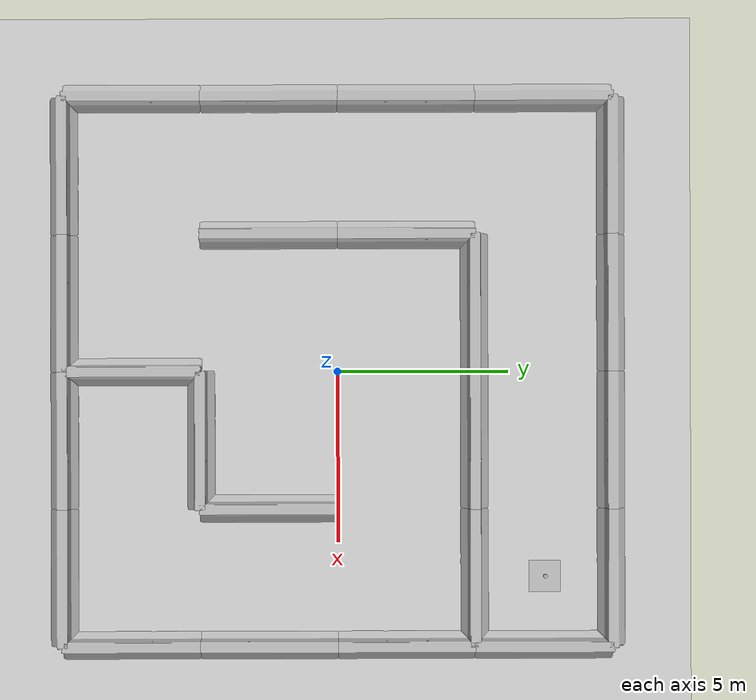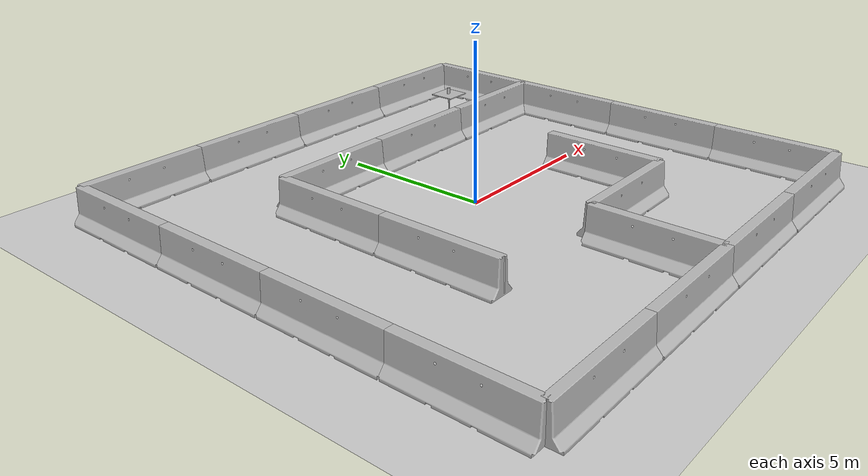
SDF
<sdf version="1.6">
 <world name="default">
  <light name="sun" type="directional">
   <pose>0 0 10 0 -0 0</pose>
   <diffuse>0.8 0.8 0.8 1</diffuse>
   <specular>0.2 0.2 0.2 1</specular>
   <attenuation>
    <range>1000</range>
    <constant>0.9</constant>
    <linear>0.01</linear>
    <quadratic>0.001</quadratic>
   </attenuation>
   <direction>-0.5 0.1 -0.9</direction>
  </light>
  <model name="ground_plane">
   <static>1</static>
   <link name="link">
    <collision name="collision">
     <geometry><plane><normal>0 0 1</normal><size>100 100</size></plane></geometry>
     <surface>
      <contact><collide_bitmask>65535</collide_bitmask></contact>
      <friction><ode><mu>100</mu><mu2>50</mu2></ode></friction>
     </surface>
    </collision>
    <visual name="visual">
     <cast_shadows>0</cast_shadows>
     <geometry><plane><normal>0 0 1</normal><size>100 100</size></plane></geometry>
     <material>
      <script><uri>file://media/materials/scripts/gazebo.material</uri><name>Gazebo/Grey</name></script>
     </material>
    </visual>
   </link>
  </model>
  <gravity>0 0 -9.8</gravity>
  <magnetic_field>6e-06 2.3e-05 -4.2e-05</magnetic_field>
  <atmosphere type="adiabatic"/>
  <physics name="default_physics" default="0" type="ode">
   <max_step_size>0.001</max_step_size>
   <real_time_factor>1</real_time_factor>
   <real_time_update_rate>1000</real_time_update_rate>
  </physics>
  <scene><ambient>0.4 0.4 0.4 1</ambient><background>0.7 0.7 0.7 1</background><shadows>1</shadows></scene>
  <spherical_coordinates>
   <surface_model>EARTH_WGS84</surface_model>
   <latitude_deg>0</latitude_deg>
   <longitude_deg>0</longitude_deg>
   <elevation>0</elevation>
   <heading_deg>0</heading_deg>
  </spherical_coordinates>
  <model name="jersey_barrier">
   <static>1</static>
   <link name="link">
    <visual name="visual">
     <geometry><mesh><uri>model://jersey_barrier/meshes/jersey_barrier.dae</uri></mesh></geometry>
    </visual>
    <collision name="upright">
     <pose>0 0 0.5715 0 -0 0</pose>
     <geometry><box><size>4.06542 0.3063 1.143</size></box></geometry>
    </collision>
    <collision name="base">
     <pose>0 0 0.032258 0 -0 0</pose>
     <geometry><box><size>4.06542 0.8107 0.064516</size></box></geometry>
    </collision>
    <collision name="base2">
     <pose>0 0 0.1 0 -0 0</pose>
     <geometry><box><size>4.06542 0.65 0.1</size></box></geometry>
    </collision>
    <collision name="base3">
     <pose>0 0 0.2 0 -0 0</pose>
     <geometry><box><size>4.06542 0.5 0.1</size></box></geometry>
    </collision>
    <collision name="left-angle">
     <pose>0 -0.224 0.2401 0.9 -0 0</pose>
     <geometry><box><size>4.06542 0.5 0.064516</size></box></geometry>
    </collision>
    <collision name="right-angle">
     <pose>0 0.224 0.2401 -0.9 0 0</pose>
     <geometry><box><size>4.06542 0.5 0.064516</size></box></geometry>
    </collision>
   </link>
   <pose>-6 -8 0 0 -0 0</pose>
  </model>
  <model name="jersey_barrier_clone">
   <static>1</static>
   <link name="link">
    <visual name="visual">
     <geometry><mesh><uri>model://jersey_barrier/meshes/jersey_barrier.dae</uri></mesh></geometry>
    </visual>
    <collision name="upright">
     <pose>0 0 0.5715 0 -0 0</pose>
     <geometry><box><size>4.06542 0.3063 1.143</size></box></geometry>
    </collision>
    <collision name="base">
     <pose>0 0 0.032258 0 -0 0</pose>
     <geometry><box><size>4.06542 0.8107 0.064516</size></box></geometry>
    </collision>
    <collision name="base2">
     <pose>0 0 0.1 0 -0 0</pose>
     <geometry><box><size>4.06542 0.65 0.1</size></box></geometry>
    </collision>
    <collision name="base3">
     <pose>0 0 0.2 0 -0 0</pose>
     <geometry><box><size>4.06542 0.5 0.1</size></box></geometry>
    </collision>
    <collision name="left-angle">
     <pose>0 -0.224 0.2401 0.9 -0 0</pose>
     <geometry><box><size>4.06542 0.5 0.064516</size></box></geometry>
    </collision>
    <collision name="right-angle">
     <pose>0 0.224 0.2401 -0.9 0 0</pose>
     <geometry><box><size>4.06542 0.5 0.064516</size></box></geometry>
    </collision>
   </link>
   <pose>2 -8 0 0 -0 0</pose>
  </model>
  <model name="jersey_barrier_clone_0">
   <static>1</static>
   <link name="link">
    <visual name="visual">
     <geometry><mesh><uri>model://jersey_barrier/meshes/jersey_barrier.dae</uri></mesh></geometry>
    </visual>
    <collision name="upright">
     <pose>0 0 0.5715 0 -0 0</pose>
     <geometry><box><size>4.06542 0.3063 1.143</size></box></geometry>
    </collision>
    <collision name="base">
     <pose>0 0 0.032258 0 -0 0</pose>
     <geometry><box><size>4.06542 0.8107 0.064516</size></box></geometry>
    </collision>
    <collision name="base2">
     <pose>0 0 0.1 0 -0 0</pose>
     <geometry><box><size>4.06542 0.65 0.1</size></box></geometry>
    </collision>
    <collision name="base3">
     <pose>0 0 0.2 0 -0 0</pose>
     <geometry><box><size>4.06542 0.5 0.1</size></box></geometry>
    </collision>
    <collision name="left-angle">
     <pose>0 -0.224 0.2401 0.9 -0 0</pose>
     <geometry><box><size>4.06542 0.5 0.064516</size></box></geometry>
    </collision>
    <collision name="right-angle">
     <pose>0 0.224 0.2401 -0.9 0 0</pose>
     <geometry><box><size>4.06542 0.5 0.064516</size></box></geometry>
    </collision>
   </link>
   <pose>-2 -8 0 0 -0 0</pose>
  </model>
  <model name="jersey_barrier_clone_1">
   <static>1</static>
   <link name="link">
    <visual name="visual">
     <geometry><mesh><uri>model://jersey_barrier/meshes/jersey_barrier.dae</uri></mesh></geometry>
    </visual>
    <collision name="upright">
     <pose>0 0 0.5715 0 -0 0</pose>
     <geometry><box><size>4.06542 0.3063 1.143</size></box></geometry>
    </collision>
    <collision name="base">
     <pose>0 0 0.032258 0 -0 0</pose>
     <geometry><box><size>4.06542 0.8107 0.064516</size></box></geometry>
    </collision>
    <collision name="base2">
     <pose>0 0 0.1 0 -0 0</pose>
     <geometry><box><size>4.06542 0.65 0.1</size></box></geometry>
    </collision>
    <collision name="base3">
     <pose>0 0 0.2 0 -0 0</pose>
     <geometry><box><size>4.06542 0.5 0.1</size></box></geometry>
    </collision>
    <collision name="left-angle">
     <pose>0 -0.224 0.2401 0.9 -0 0</pose>
     <geometry><box><size>4.06542 0.5 0.064516</size></box></geometry>
    </collision>
    <collision name="right-angle">
     <pose>0 0.224 0.2401 -0.9 0 0</pose>
     <geometry><box><size>4.06542 0.5 0.064516</size></box></geometry>
    </collision>
   </link>
   <pose>8 6 0 0 -0 1.5708</pose>
  </model>
  <model name="jersey_barrier_clone_2">
   <static>1</static>
   <link name="link">
    <visual name="visual">
     <geometry><mesh><uri>model://jersey_barrier/meshes/jersey_barrier.dae</uri></mesh></geometry>
    </visual>
    <collision name="upright">
     <pose>0 0 0.5715 0 -0 0</pose>
     <geometry><box><size>4.06542 0.3063 1.143</size></box></geometry>
    </collision>
    <collision name="base">
     <pose>0 0 0.032258 0 -0 0</pose>
     <geometry><box><size>4.06542 0.8107 0.064516</size></box></geometry>
    </collision>
    <collision name="base2">
     <pose>0 0 0.1 0 -0 0</pose>
     <geometry><box><size>4.06542 0.65 0.1</size></box></geometry>
    </collision>
    <collision name="base3">
     <pose>0 0 0.2 0 -0 0</pose>
     <geometry><box><size>4.06542 0.5 0.1</size></box></geometry>
    </collision>
    <collision name="left-angle">
     <pose>0 -0.224 0.2401 0.9 -0 0</pose>
     <geometry><box><size>4.06542 0.5 0.064516</size></box></geometry>
    </collision>
    <collision name="right-angle">
     <pose>0 0.224 0.2401 -0.9 0 0</pose>
     <geometry><box><size>4.06542 0.5 0.064516</size></box></geometry>
    </collision>
   </link>
   <pose>-2 4 0 0 -0 0</pose>
  </model>
  <model name="jersey_barrier_clone_3">
   <static>1</static>
   <link name="link">
    <visual name="visual">
     <geometry><mesh><uri>model://jersey_barrier/meshes/jersey_barrier.dae</uri></mesh></geometry>
    </visual>
    <collision name="upright">
     <pose>0 0 0.5715 0 -0 0</pose>
     <geometry><box><size>4.06542 0.3063 1.143</size></box></geometry>
    </collision>
    <collision name="base">
     <pose>0 0 0.032258 0 -0 0</pose>
     <geometry><box><size>4.06542 0.8107 0.064516</size></box></geometry>
    </collision>
    <collision name="base2">
     <pose>0 0 0.1 0 -0 0</pose>
     <geometry><box><size>4.06542 0.65 0.1</size></box></geometry>
    </collision>
    <collision name="base3">
     <pose>0 0 0.2 0 -0 0</pose>
     <geometry><box><size>4.06542 0.5 0.1</size></box></geometry>
    </collision>
    <collision name="left-angle">
     <pose>0 -0.224 0.2401 0.9 -0 0</pose>
     <geometry><box><size>4.06542 0.5 0.064516</size></box></geometry>
    </collision>
    <collision name="right-angle">
     <pose>0 0.224 0.2401 -0.9 0 0</pose>
     <geometry><box><size>4.06542 0.5 0.064516</size></box></geometry>
    </collision>
   </link>
   <pose>6 8 0 0 -0 0</pose>
  </model>
  <model name="jersey_barrier_clone_4">
   <static>1</static>
   <link name="link">
    <visual name="visual">
     <geometry><mesh><uri>model://jersey_barrier/meshes/jersey_barrier.dae</uri></mesh></geometry>
    </visual>
    <collision name="upright">
     <pose>0 0 0.5715 0 -0 0</pose>
     <geometry><box><size>4.06542 0.3063 1.143</size></box></geometry>
    </collision>
    <collision name="base">
     <pose>0 0 0.032258 0 -0 0</pose>
     <geometry><box><size>4.06542 0.8107 0.064516</size></box></geometry>
    </collision>
    <collision name="base2">
     <pose>0 0 0.1 0 -0 0</pose>
     <geometry><box><size>4.06542 0.65 0.1</size></box></geometry>
    </collision>
    <collision name="base3">
     <pose>0 0 0.2 0 -0 0</pose>
     <geometry><box><size>4.06542 0.5 0.1</size></box></geometry>
    </collision>
    <collision name="left-angle">
     <pose>0 -0.224 0.2401 0.9 -0 0</pose>
     <geometry><box><size>4.06542 0.5 0.064516</size></box></geometry>
    </collision>
    <collision name="right-angle">
     <pose>0 0.224 0.2401 -0.9 0 0</pose>
     <geometry><box><size>4.06542 0.5 0.064516</size></box></geometry>
    </collision>
   </link>
   <pose>2 8 0 0 -0 0</pose>
  </model>
  <model name="jersey_barrier_clone_5">
   <static>1</static>
   <link name="link">
    <visual name="visual">
     <geometry><mesh><uri>model://jersey_barrier/meshes/jersey_barrier.dae</uri></mesh></geometry>
    </visual>
    <collision name="upright">
     <pose>0 0 0.5715 0 -0 0</pose>
     <geometry><box><size>4.06542 0.3063 1.143</size></box></geometry>
    </collision>
    <collision name="base">
     <pose>0 0 0.032258 0 -0 0</pose>
     <geometry><box><size>4.06542 0.8107 0.064516</size></box></geometry>
    </collision>
    <collision name="base2">
     <pose>0 0 0.1 0 -0 0</pose>
     <geometry><box><size>4.06542 0.65 0.1</size></box></geometry>
    </collision>
    <collision name="base3">
     <pose>0 0 0.2 0 -0 0</pose>
     <geometry><box><size>4.06542 0.5 0.1</size></box></geometry>
    </collision>
    <collision name="left-angle">
     <pose>0 -0.224 0.2401 0.9 -0 0</pose>
     <geometry><box><size>4.06542 0.5 0.064516</size></box></geometry>
    </collision>
    <collision name="right-angle">
     <pose>0 0.224 0.2401 -0.9 0 0</pose>
     <geometry><box><size>4.06542 0.5 0.064516</size></box></geometry>
    </collision>
   </link>
   <pose>2 4 0 0 -0 0</pose>
  </model>
  <model name="jersey_barrier_clone_7">
   <static>1</static>
   <link name="link">
    <visual name="visual">
     <geometry><mesh><uri>model://jersey_barrier/meshes/jersey_barrier.dae</uri></mesh></geometry>
    </visual>
    <collision name="upright">
     <pose>0 0 0.5715 0 -0 0</pose>
     <geometry><box><size>4.06542 0.3063 1.143</size></box></geometry>
    </collision>
    <collision name="base">
     <pose>0 0 0.032258 0 -0 0</pose>
     <geometry><box><size>4.06542 0.8107 0.064516</size></box></geometry>
    </collision>
    <collision name="base2">
     <pose>0 0 0.1 0 -0 0</pose>
     <geometry><box><size>4.06542 0.65 0.1</size></box></geometry>
    </collision>
    <collision name="base3">
     <pose>0 0 0.2 0 -0 0</pose>
     <geometry><box><size>4.06542 0.5 0.1</size></box></geometry>
    </collision>
    <collision name="left-angle">
     <pose>0 -0.224 0.2401 0.9 -0 0</pose>
     <geometry><box><size>4.06542 0.5 0.064516</size></box></geometry>
    </collision>
    <collision name="right-angle">
     <pose>0 0.224 0.2401 -0.9 0 0</pose>
     <geometry><box><size>4.06542 0.5 0.064516</size></box></geometry>
    </collision>
   </link>
   <pose>-2 8 0 0 -0 0</pose>
  </model>
  <model name="jersey_barrier_clone_8">
   <static>1</static>
   <link name="link">
    <visual name="visual">
     <geometry><mesh><uri>model://jersey_barrier/meshes/jersey_barrier.dae</uri></mesh></geometry>
    </visual>
    <collision name="upright">
     <pose>0 0 0.5715 0 -0 0</pose>
     <geometry><box><size>4.06542 0.3063 1.143</size></box></geometry>
    </collision>
    <collision name="base">
     <pose>0 0 0.032258 0 -0 0</pose>
     <geometry><box><size>4.06542 0.8107 0.064516</size></box></geometry>
    </collision>
    <collision name="base2">
     <pose>0 0 0.1 0 -0 0</pose>
     <geometry><box><size>4.06542 0.65 0.1</size></box></geometry>
    </collision>
    <collision name="base3">
     <pose>0 0 0.2 0 -0 0</pose>
     <geometry><box><size>4.06542 0.5 0.1</size></box></geometry>
    </collision>
    <collision name="left-angle">
     <pose>0 -0.224 0.2401 0.9 -0 0</pose>
     <geometry><box><size>4.06542 0.5 0.064516</size></box></geometry>
    </collision>
    <collision name="right-angle">
     <pose>0 0.224 0.2401 -0.9 0 0</pose>
     <geometry><box><size>4.06542 0.5 0.064516</size></box></geometry>
    </collision>
   </link>
   <pose>6 4 0 0 -0 0</pose>
  </model>
  <model name="jersey_barrier_clone_9">
   <static>1</static>
   <link name="link">
    <visual name="visual">
     <geometry><mesh><uri>model://jersey_barrier/meshes/jersey_barrier.dae</uri></mesh></geometry>
    </visual>
    <collision name="upright">
     <pose>0 0 0.5715 0 -0 0</pose>
     <geometry><box><size>4.06542 0.3063 1.143</size></box></geometry>
    </collision>
    <collision name="base">
     <pose>0 0 0.032258 0 -0 0</pose>
     <geometry><box><size>4.06542 0.8107 0.064516</size></box></geometry>
    </collision>
    <collision name="base2">
     <pose>0 0 0.1 0 -0 0</pose>
     <geometry><box><size>4.06542 0.65 0.1</size></box></geometry>
    </collision>
    <collision name="base3">
     <pose>0 0 0.2 0 -0 0</pose>
     <geometry><box><size>4.06542 0.5 0.1</size></box></geometry>
    </collision>
    <collision name="left-angle">
     <pose>0 -0.224 0.2401 0.9 -0 0</pose>
     <geometry><box><size>4.06542 0.5 0.064516</size></box></geometry>
    </collision>
    <collision name="right-angle">
     <pose>0 0.224 0.2401 -0.9 0 0</pose>
     <geometry><box><size>4.06542 0.5 0.064516</size></box></geometry>
    </collision>
   </link>
   <pose>6 -8 0 0 -0 0</pose>
  </model>
  <model name="jersey_barrier_clone_10">
   <static>1</static>
   <link name="link">
    <visual name="visual">
     <geometry><mesh><uri>model://jersey_barrier/meshes/jersey_barrier.dae</uri></mesh></geometry>
    </visual>
    <collision name="upright">
     <pose>0 0 0.5715 0 -0 0</pose>
     <geometry><box><size>4.06542 0.3063 1.143</size></box></geometry>
    </collision>
    <collision name="base">
     <pose>0 0 0.032258 0 -0 0</pose>
     <geometry><box><size>4.06542 0.8107 0.064516</size></box></geometry>
    </collision>
    <collision name="base2">
     <pose>0 0 0.1 0 -0 0</pose>
     <geometry><box><size>4.06542 0.65 0.1</size></box></geometry>
    </collision>
    <collision name="base3">
     <pose>0 0 0.2 0 -0 0</pose>
     <geometry><box><size>4.06542 0.5 0.1</size></box></geometry>
    </collision>
    <collision name="left-angle">
     <pose>0 -0.224 0.2401 0.9 -0 0</pose>
     <geometry><box><size>4.06542 0.5 0.064516</size></box></geometry>
    </collision>
    <collision name="right-angle">
     <pose>0 0.224 0.2401 -0.9 0 0</pose>
     <geometry><box><size>4.06542 0.5 0.064516</size></box></geometry>
    </collision>
   </link>
   <pose>2 -4 0 0 -0 0</pose>
  </model>
  <model name="jersey_barrier_clone_11">
   <static>1</static>
   <link name="link">
    <visual name="visual">
     <geometry><mesh><uri>model://jersey_barrier/meshes/jersey_barrier.dae</uri></mesh></geometry>
    </visual>
    <collision name="upright">
     <pose>0 0 0.5715 0 -0 0</pose>
     <geometry><box><size>4.06542 0.3063 1.143</size></box></geometry>
    </collision>
    <collision name="base">
     <pose>0 0 0.032258 0 -0 0</pose>
     <geometry><box><size>4.06542 0.8107 0.064516</size></box></geometry>
    </collision>
    <collision name="base2">
     <pose>0 0 0.1 0 -0 0</pose>
     <geometry><box><size>4.06542 0.65 0.1</size></box></geometry>
    </collision>
    <collision name="base3">
     <pose>0 0 0.2 0 -0 0</pose>
     <geometry><box><size>4.06542 0.5 0.1</size></box></geometry>
    </collision>
    <collision name="left-angle">
     <pose>0 -0.224 0.2401 0.9 -0 0</pose>
     <geometry><box><size>4.06542 0.5 0.064516</size></box></geometry>
    </collision>
    <collision name="right-angle">
     <pose>0 0.224 0.2401 -0.9 0 0</pose>
     <geometry><box><size>4.06542 0.5 0.064516</size></box></geometry>
    </collision>
   </link>
   <pose>-6 8 0 0 -0 0</pose>
  </model>
  <model name="jersey_barrier_clone_1_clone">
   <static>1</static>
   <link name="link">
    <visual name="visual">
     <geometry><mesh><uri>model://jersey_barrier/meshes/jersey_barrier.dae</uri></mesh></geometry>
    </visual>
    <collision name="upright">
     <pose>0 0 0.5715 0 -0 0</pose>
     <geometry><box><size>4.06542 0.3063 1.143</size></box></geometry>
    </collision>
    <collision name="base">
     <pose>0 0 0.032258 0 -0 0</pose>
     <geometry><box><size>4.06542 0.8107 0.064516</size></box></geometry>
    </collision>
    <collision name="base2">
     <pose>0 0 0.1 0 -0 0</pose>
     <geometry><box><size>4.06542 0.65 0.1</size></box></geometry>
    </collision>
    <collision name="base3">
     <pose>0 0 0.2 0 -0 0</pose>
     <geometry><box><size>4.06542 0.5 0.1</size></box></geometry>
    </collision>
    <collision name="left-angle">
     <pose>0 -0.224 0.2401 0.9 -0 0</pose>
     <geometry><box><size>4.06542 0.5 0.064516</size></box></geometry>
    </collision>
    <collision name="right-angle">
     <pose>0 0.224 0.2401 -0.9 0 0</pose>
     <geometry><box><size>4.06542 0.5 0.064516</size></box></geometry>
    </collision>
   </link>
   <pose>-8 -6 0 0 -0 1.5708</pose>
  </model>
  <model name="jersey_barrier_clone_1_clone_0">
   <static>1</static>
   <link name="link">
    <visual name="visual">
     <geometry><mesh><uri>model://jersey_barrier/meshes/jersey_barrier.dae</uri></mesh></geometry>
    </visual>
    <collision name="upright">
     <pose>0 0 0.5715 0 -0 0</pose>
     <geometry><box><size>4.06542 0.3063 1.143</size></box></geometry>
    </collision>
    <collision name="base">
     <pose>0 0 0.032258 0 -0 0</pose>
     <geometry><box><size>4.06542 0.8107 0.064516</size></box></geometry>
    </collision>
    <collision name="base2">
     <pose>0 0 0.1 0 -0 0</pose>
     <geometry><box><size>4.06542 0.65 0.1</size></box></geometry>
    </collision>
    <collision name="base3">
     <pose>0 0 0.2 0 -0 0</pose>
     <geometry><box><size>4.06542 0.5 0.1</size></box></geometry>
    </collision>
    <collision name="left-angle">
     <pose>0 -0.224 0.2401 0.9 -0 0</pose>
     <geometry><box><size>4.06542 0.5 0.064516</size></box></geometry>
    </collision>
    <collision name="right-angle">
     <pose>0 0.224 0.2401 -0.9 0 0</pose>
     <geometry><box><size>4.06542 0.5 0.064516</size></box></geometry>
    </collision>
   </link>
   <pose>-8 -2 0 0 -0 1.5708</pose>
  </model>
  <model name="jersey_barrier_clone_1_clone_1">
   <static>1</static>
   <link name="link">
    <visual name="visual">
     <geometry><mesh><uri>model://jersey_barrier/meshes/jersey_barrier.dae</uri></mesh></geometry>
    </visual>
    <collision name="upright">
     <pose>0 0 0.5715 0 -0 0</pose>
     <geometry><box><size>4.06542 0.3063 1.143</size></box></geometry>
    </collision>
    <collision name="base">
     <pose>0 0 0.032258 0 -0 0</pose>
     <geometry><box><size>4.06542 0.8107 0.064516</size></box></geometry>
    </collision>
    <collision name="base2">
     <pose>0 0 0.1 0 -0 0</pose>
     <geometry><box><size>4.06542 0.65 0.1</size></box></geometry>
    </collision>
    <collision name="base3">
     <pose>0 0 0.2 0 -0 0</pose>
     <geometry><box><size>4.06542 0.5 0.1</size></box></geometry>
    </collision>
    <collision name="left-angle">
     <pose>0 -0.224 0.2401 0.9 -0 0</pose>
     <geometry><box><size>4.06542 0.5 0.064516</size></box></geometry>
    </collision>
    <collision name="right-angle">
     <pose>0 0.224 0.2401 -0.9 0 0</pose>
     <geometry><box><size>4.06542 0.5 0.064516</size></box></geometry>
    </collision>
   </link>
   <pose>-8 2 0 0 -0 1.5708</pose>
  </model>
  <model name="jersey_barrier_clone_1_clone_2">
   <static>1</static>
   <link name="link">
    <visual name="visual">
     <geometry><mesh><uri>model://jersey_barrier/meshes/jersey_barrier.dae</uri></mesh></geometry>
    </visual>
    <collision name="upright">
     <pose>0 0 0.5715 0 -0 0</pose>
     <geometry><box><size>4.06542 0.3063 1.143</size></box></geometry>
    </collision>
    <collision name="base">
     <pose>0 0 0.032258 0 -0 0</pose>
     <geometry><box><size>4.06542 0.8107 0.064516</size></box></geometry>
    </collision>
    <collision name="base2">
     <pose>0 0 0.1 0 -0 0</pose>
     <geometry><box><size>4.06542 0.65 0.1</size></box></geometry>
    </collision>
    <collision name="base3">
     <pose>0 0 0.2 0 -0 0</pose>
     <geometry><box><size>4.06542 0.5 0.1</size></box></geometry>
    </collision>
    <collision name="left-angle">
     <pose>0 -0.224 0.2401 0.9 -0 0</pose>
     <geometry><box><size>4.06542 0.5 0.064516</size></box></geometry>
    </collision>
    <collision name="right-angle">
     <pose>0 0.224 0.2401 -0.9 0 0</pose>
     <geometry><box><size>4.06542 0.5 0.064516</size></box></geometry>
    </collision>
   </link>
   <pose>-8 6 0 0 -0 1.5708</pose>
  </model>
  <model name="jersey_barrier_clone_1_clone_3">
   <static>1</static>
   <link name="link">
    <visual name="visual">
     <geometry><mesh><uri>model://jersey_barrier/meshes/jersey_barrier.dae</uri></mesh></geometry>
    </visual>
    <collision name="upright">
     <pose>0 0 0.5715 0 -0 0</pose>
     <geometry><box><size>4.06542 0.3063 1.143</size></box></geometry>
    </collision>
    <collision name="base">
     <pose>0 0 0.032258 0 -0 0</pose>
     <geometry><box><size>4.06542 0.8107 0.064516</size></box></geometry>
    </collision>
    <collision name="base2">
     <pose>0 0 0.1 0 -0 0</pose>
     <geometry><box><size>4.06542 0.65 0.1</size></box></geometry>
    </collision>
    <collision name="base3">
     <pose>0 0 0.2 0 -0 0</pose>
     <geometry><box><size>4.06542 0.5 0.1</size></box></geometry>
    </collision>
    <collision name="left-angle">
     <pose>0 -0.224 0.2401 0.9 -0 0</pose>
     <geometry><box><size>4.06542 0.5 0.064516</size></box></geometry>
    </collision>
    <collision name="right-angle">
     <pose>0 0.224 0.2401 -0.9 0 0</pose>
     <geometry><box><size>4.06542 0.5 0.064516</size></box></geometry>
    </collision>
   </link>
   <pose>8 -6 0 0 -0 1.5708</pose>
  </model>
  <model name="jersey_barrier_clone_1_clone_4">
   <static>1</static>
   <link name="link">
    <visual name="visual">
     <geometry><mesh><uri>model://jersey_barrier/meshes/jersey_barrier.dae</uri></mesh></geometry>
    </visual>
    <collision name="upright">
     <pose>0 0 0.5715 0 -0 0</pose>
     <geometry><box><size>4.06542 0.3063 1.143</size></box></geometry>
    </collision>
    <collision name="base">
     <pose>0 0 0.032258 0 -0 0</pose>
     <geometry><box><size>4.06542 0.8107 0.064516</size></box></geometry>
    </collision>
    <collision name="base2">
     <pose>0 0 0.1 0 -0 0</pose>
     <geometry><box><size>4.06542 0.65 0.1</size></box></geometry>
    </collision>
    <collision name="base3">
     <pose>0 0 0.2 0 -0 0</pose>
     <geometry><box><size>4.06542 0.5 0.1</size></box></geometry>
    </collision>
    <collision name="left-angle">
     <pose>0 -0.224 0.2401 0.9 -0 0</pose>
     <geometry><box><size>4.06542 0.5 0.064516</size></box></geometry>
    </collision>
    <collision name="right-angle">
     <pose>0 0.224 0.2401 -0.9 0 0</pose>
     <geometry><box><size>4.06542 0.5 0.064516</size></box></geometry>
    </collision>
   </link>
   <pose>8 -2 0 0 -0 1.5708</pose>
  </model>
  <model name="jersey_barrier_clone_1_clone_5">
   <static>1</static>
   <link name="link">
    <visual name="visual">
     <geometry><mesh><uri>model://jersey_barrier/meshes/jersey_barrier.dae</uri></mesh></geometry>
    </visual>
    <collision name="upright">
     <pose>0 0 0.5715 0 -0 0</pose>
     <geometry><box><size>4.06542 0.3063 1.143</size></box></geometry>
    </collision>
    <collision name="base">
     <pose>0 0 0.032258 0 -0 0</pose>
     <geometry><box><size>4.06542 0.8107 0.064516</size></box></geometry>
    </collision>
    <collision name="base2">
     <pose>0 0 0.1 0 -0 0</pose>
     <geometry><box><size>4.06542 0.65 0.1</size></box></geometry>
    </collision>
    <collision name="base3">
     <pose>0 0 0.2 0 -0 0</pose>
     <geometry><box><size>4.06542 0.5 0.1</size></box></geometry>
    </collision>
    <collision name="left-angle">
     <pose>0 -0.224 0.2401 0.9 -0 0</pose>
     <geometry><box><size>4.06542 0.5 0.064516</size></box></geometry>
    </collision>
    <collision name="right-angle">
     <pose>0 0.224 0.2401 -0.9 0 0</pose>
     <geometry><box><size>4.06542 0.5 0.064516</size></box></geometry>
    </collision>
   </link>
   <pose>8 2 0 0 -0 1.5708</pose>
  </model>
  <model name="jersey_barrier_clone_1_clone_5_clone">
   <static>1</static>
   <link name="link">
    <visual name="visual">
     <geometry><mesh><uri>model://jersey_barrier/meshes/jersey_barrier.dae</uri></mesh></geometry>
    </visual>
    <collision name="upright">
     <pose>0 0 0.5715 0 -0 0</pose>
     <geometry><box><size>4.06542 0.3063 1.143</size></box></geometry>
    </collision>
    <collision name="base">
     <pose>0 0 0.032258 0 -0 0</pose>
     <geometry><box><size>4.06542 0.8107 0.064516</size></box></geometry>
    </collision>
    <collision name="base2">
     <pose>0 0 0.1 0 -0 0</pose>
     <geometry><box><size>4.06542 0.65 0.1</size></box></geometry>
    </collision>
    <collision name="base3">
     <pose>0 0 0.2 0 -0 0</pose>
     <geometry><box><size>4.06542 0.5 0.1</size></box></geometry>
    </collision>
    <collision name="left-angle">
     <pose>0 -0.224 0.2401 0.9 -0 0</pose>
     <geometry><box><size>4.06542 0.5 0.064516</size></box></geometry>
    </collision>
    <collision name="right-angle">
     <pose>0 0.224 0.2401 -0.9 0 0</pose>
     <geometry><box><size>4.06542 0.5 0.064516</size></box></geometry>
    </collision>
   </link>
   <pose>-4 2 0 0 -0 1.5708</pose>
  </model>
  <model name="jersey_barrier_clone_1_clone_5_clone_0">
   <static>1</static>
   <link name="link">
    <visual name="visual">
     <geometry><mesh><uri>model://jersey_barrier/meshes/jersey_barrier.dae</uri></mesh></geometry>
    </visual>
    <collision name="upright">
     <pose>0 0 0.5715 0 -0 0</pose>
     <geometry><box><size>4.06542 0.3063 1.143</size></box></geometry>
    </collision>
    <collision name="base">
     <pose>0 0 0.032258 0 -0 0</pose>
     <geometry><box><size>4.06542 0.8107 0.064516</size></box></geometry>
    </collision>
    <collision name="base2">
     <pose>0 0 0.1 0 -0 0</pose>
     <geometry><box><size>4.06542 0.65 0.1</size></box></geometry>
    </collision>
    <collision name="base3">
     <pose>0 0 0.2 0 -0 0</pose>
     <geometry><box><size>4.06542 0.5 0.1</size></box></geometry>
    </collision>
    <collision name="left-angle">
     <pose>0 -0.224 0.2401 0.9 -0 0</pose>
     <geometry><box><size>4.06542 0.5 0.064516</size></box></geometry>
    </collision>
    <collision name="right-angle">
     <pose>0 0.224 0.2401 -0.9 0 0</pose>
     <geometry><box><size>4.06542 0.5 0.064516</size></box></geometry>
    </collision>
   </link>
   <pose>4 -2 0 0 -0 1.5708</pose>
  </model>
  <model name="jersey_barrier_clone_1_clone_5_clone_1">
   <static>1</static>
   <link name="link">
    <visual name="visual">
     <geometry><mesh><uri>model://jersey_barrier/meshes/jersey_barrier.dae</uri></mesh></geometry>
    </visual>
    <collision name="upright">
     <pose>0 0 0.5715 0 -0 0</pose>
     <geometry><box><size>4.06542 0.3063 1.143</size></box></geometry>
    </collision>
    <collision name="base">
     <pose>0 0 0.032258 0 -0 0</pose>
     <geometry><box><size>4.06542 0.8107 0.064516</size></box></geometry>
    </collision>
    <collision name="base2">
     <pose>0 0 0.1 0 -0 0</pose>
     <geometry><box><size>4.06542 0.65 0.1</size></box></geometry>
    </collision>
    <collision name="base3">
     <pose>0 0 0.2 0 -0 0</pose>
     <geometry><box><size>4.06542 0.5 0.1</size></box></geometry>
    </collision>
    <collision name="left-angle">
     <pose>0 -0.224 0.2401 0.9 -0 0</pose>
     <geometry><box><size>4.06542 0.5 0.064516</size></box></geometry>
    </collision>
    <collision name="right-angle">
     <pose>0 0.224 0.2401 -0.9 0 0</pose>
     <geometry><box><size>4.06542 0.5 0.064516</size></box></geometry>
    </collision>
   </link>
   <pose>0 -6 0 0 -0 1.5708</pose>
  </model>
  <model name="jersey_barrier_clone_1_clone_5_clone_2">
   <static>1</static>
   <link name="link">
    <visual name="visual">
     <geometry><mesh><uri>model://jersey_barrier/meshes/jersey_barrier.dae</uri></mesh></geometry>
    </visual>
    <collision name="upright">
     <pose>0 0 0.5715 0 -0 0</pose>
     <geometry><box><size>4.06542 0.3063 1.143</size></box></geometry>
    </collision>
    <collision name="base">
     <pose>0 0 0.032258 0 -0 0</pose>
     <geometry><box><size>4.06542 0.8107 0.064516</size></box></geometry>
    </collision>
    <collision name="base2">
     <pose>0 0 0.1 0 -0 0</pose>
     <geometry><box><size>4.06542 0.65 0.1</size></box></geometry>
    </collision>
    <collision name="base3">
     <pose>0 0 0.2 0 -0 0</pose>
     <geometry><box><size>4.06542 0.5 0.1</size></box></geometry>
    </collision>
    <collision name="left-angle">
     <pose>0 -0.224 0.2401 0.9 -0 0</pose>
     <geometry><box><size>4.06542 0.5 0.064516</size></box></geometry>
    </collision>
    <collision name="right-angle">
     <pose>0 0.224 0.2401 -0.9 0 0</pose>
     <geometry><box><size>4.06542 0.5 0.064516</size></box></geometry>
    </collision>
   </link>
   <pose>-4 -2 0 0 -0 1.5708</pose>
  </model>
  <model name="cafe_table">
   <static>1</static>
   <link name="link">
    <collision name="surface">
     <pose>0 0 0.755 0 -0 0</pose>
     <geometry><box><size>0.913 0.913 0.04</size></box></geometry>
    </collision>
    <collision name="column">
     <pose>0 0 0.37 0 -0 0</pose>
     <geometry><box><size>0.042 0.042 0.74</size></box></geometry>
    </collision>
    <collision name="base">
     <pose>0 0 0.02 0 -0 0</pose>
     <geometry><box><size>0.56 0.56 0.04</size></box></geometry>
    </collision>
    <visual name="visual">
     <geometry><mesh><uri>model://cafe_table/meshes/cafe_table.dae</uri></mesh></geometry>
    </visual>
   </link>
   <pose>5.95738 6.00705 0 0 -0 0</pose>
  </model>
  <model name="beer">
   <link name="link">
    <pose>0 0 0.115 0 -0 0</pose>
    <inertial>
     <mass>0.39</mass>
     <inertia><ixx>0.00058</ixx><ixy>0</ixy><ixz>0</ixz><iyy>0.00058</iyy><iyz>0</iyz><izz>0.00019</izz></inertia>
    </inertial>
    <collision name="collision">
     <geometry><cylinder><radius>0.055</radius><length>0.23</length></cylinder></geometry>
    </collision>
    <visual name="visual">
     <geometry><cylinder><radius>0.055</radius><length>0.23</length></cylinder></geometry>
     <material>
      <script>
       <uri>model://beer/materials/scripts</uri>
       <uri>model://beer/materials/textures</uri>
       <name>Beer/Diffuse</name>
      </script>
     </material>
    </visual>
   </link>
   <pose>5.95394 6.02419 0.774992 2.4e-05 7e-06 0.000265</pose>
  </model>
 </world>
</sdf>
